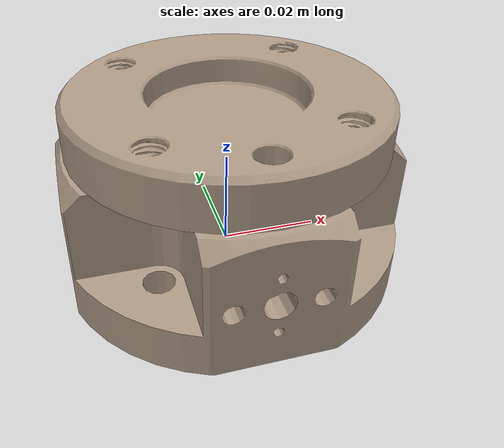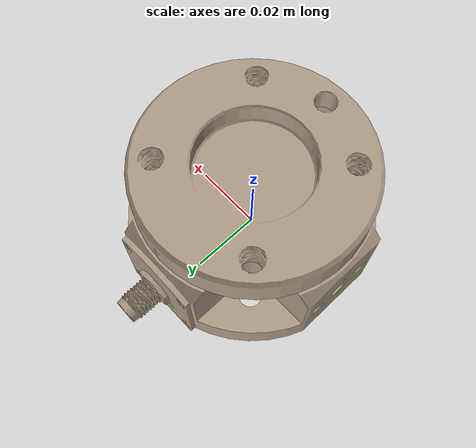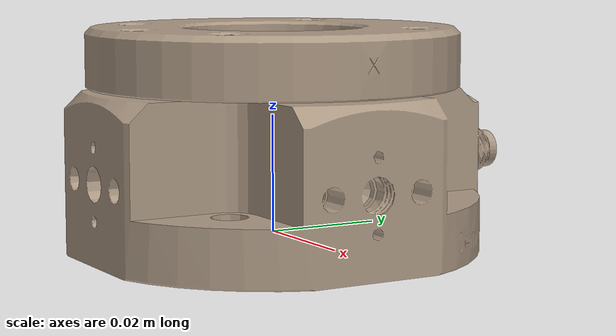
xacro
<?xml version="1.0"?>
<robot xmlns:xacro="http://wiki.ros.org/xacro"
       name="sensor" >

  <xacro:arg name="prefix" default="ft_sensor0"/>

  <xacro:include filename="$(find rokubimini_description)/urdf/BFT_SENS_ECAT_M8.urdf.xacro" />

  <xacro:BFT_SENS_ECAT_M8 prefix="$(arg prefix)" />

  <link name="world" />

  <joint name="world_joint" type="fixed">
    <parent link="world" />
    <child link = "ft_sensor0_mounting" />
    <origin xyz="0.0 0.0 0.0" rpy="0.0 0.0 0.0" />
  </joint>

</robot>

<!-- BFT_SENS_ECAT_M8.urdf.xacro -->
<robot xmlns:xacro="http://wiki.ros.org/xacro">
  <xacro:macro name="BFT_SENS_ECAT_M8" params="prefix">

    <link
      name="${prefix}_mounting">
      <inertial>
        <origin
          xyz="-1.0427E-05 -0.0012441 0.010482"
          rpy="0 0 0" />
        <mass
          value="0.12633" />
        <inertia
          ixx="4.7281E-05"
          ixy="3.9217E-09"
          ixz="-9.7216E-10"
          iyy="5.4333E-05"
          iyz="2.413E-07"
          izz="8.75E-05" />
      </inertial>
      <visual>
        <origin
          xyz="0 0 0"
          rpy="0 0 0" />
        <geometry>
          <mesh filename="package://rokubimini_description/meshes/BFT_SENS_ECAT_M8/mounting.STL" />
        </geometry>
        <material
          name="">
          <color
            rgba="0.6902 0.61176 0.52941 1" />
        </material>
      </visual>
      <collision>
        <origin
          xyz="0 0 0.011"
          rpy="0 0 0" />
        <geometry>
          <cylinder radius="0.035" length="0.028"/>
        </geometry>
      </collision>
      <collision>
        <origin
          xyz="0 0.051 0.0115"
          rpy="1.57 0 0" />
        <geometry>
          <cylinder radius="0.0065" length="0.032"/>
        </geometry>
      </collision>
    </link>

    <link
      name="${prefix}_imu">
      <inertial>
        <origin
          xyz="-0.00017427 -0.00075655 -0.0031216"
          rpy="0 0 0" />
        <mass
          value="0.0031626" />
        <inertia
          ixx="1.5773E-07"
          ixy="-2.29E-11"
          ixz="-4.5155E-13"
          iyy="1.5929E-07"
          iyz="3.4636E-12"
          izz="3.1594E-07" />
      </inertial>
      <visual>
        <origin
          xyz="0 0 -0.0035"
          rpy="0 0 0" />
        <geometry>
          <cylinder radius="0.019" length="0.0075"/>
        </geometry>
        <material
          name="Bota_material">
          <color
            rgba="0.79216 0.81961 0.93333 1" />
        </material>
      </visual>
    </link>

    <joint
      name="mounting_to_imu"
      type="fixed">
      <origin
        xyz="0 0 0.0093"
        rpy="0 0 0" />
      <parent
        link="${prefix}_mounting" />
      <child
        link="${prefix}_imu" />
      <axis
        xyz="0 0 0" />
    </joint>

    <link
      name="${prefix}_wrench">
      <inertial>
        <origin
          xyz="-1.9753E-07 0.00017443 -0.0070758"
          rpy="0 0 0" />
        <mass
          value="0.081117" />
        <inertia
          ixx="2.1858E-05"
          ixy="-1.9153E-12"
          ixz="3.7592E-11"
          iyy="2.2215E-05"
          iyz="-4.9937E-08"
          izz="4.0048E-05" />
      </inertial>

      <visual>
        <origin
          xyz="0 0 0"
          rpy="0 0 0" />
        <geometry>
          <mesh filename="package://rokubimini_description/meshes/BFT_SENS_ECAT_M8/wrench.STL" />
        </geometry>
        <material
          name="">
          <color
            rgba="0.6902 0.61176 0.52941 1" />
        </material>
      </visual>
      <collision>
        <origin
          xyz="0 0 -0.005"
          rpy="0 0 0" />
        <geometry>
          <cylinder radius="0.0315" length="0.01"/>
        </geometry>
      </collision>
    </link>

    <joint
      name="mounting_to_wrench"
      type="fixed">
      <origin
        xyz="0 0 0.035"
        rpy="0 0 0" />
      <parent
        link="${prefix}_mounting" />
      <child
        link="${prefix}_wrench" />
      <axis
        xyz="0 0 0" />
    </joint>

    <link
      name="${prefix}_mech1">
    </link>

    <joint
      name="mounting_to_mech1"
      type="fixed">
      <origin
        xyz="-0.032879 0 0.0105"
        rpy="1.5625 0 -1.5708" />
      <parent
        link="${prefix}_mounting" />
      <child
        link="${prefix}_mech1" />
      <axis
        xyz="0 0 0" />
    </joint>

    <link
      name="${prefix}_mech2">
    </link>

    <joint
      name="mounting_to_mech2"
      type="fixed">
      <origin
        xyz="0 -0.032879 0.0105"
        rpy="1.5708 0 0" />
      <parent
        link="${prefix}_mounting" />
      <child
        link="${prefix}_mech2" />
      <axis
        xyz="0 0 0" />
    </joint>

    <link
      name="${prefix}_mech3">
    </link>

    <joint
      name="mounting_to_mech3"
      type="fixed">
      <origin
        xyz="0.032879 0 0.0105"
        rpy="1.5708 0 1.5708" />
      <parent
        link="${prefix}_mounting" />
      <child
        link="${prefix}_mech3" />
      <axis
        xyz="0 0 0" />
    </joint>

  </xacro:macro>
</robot>
